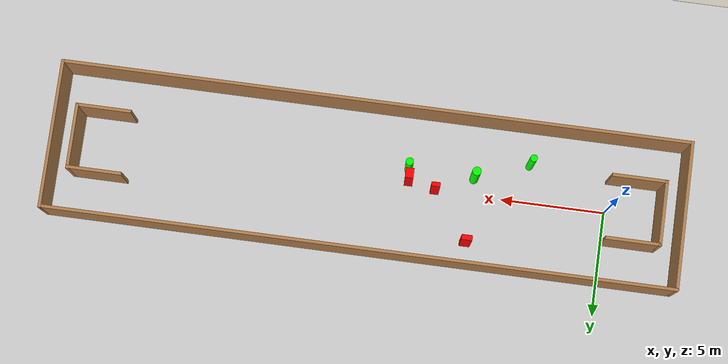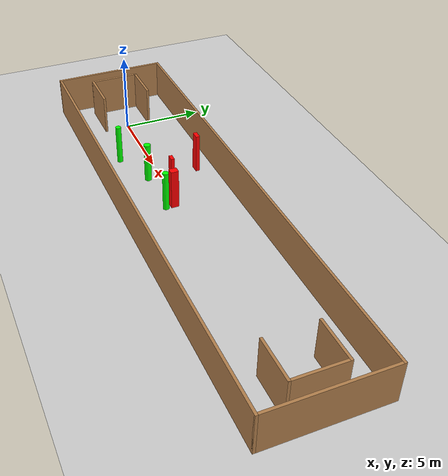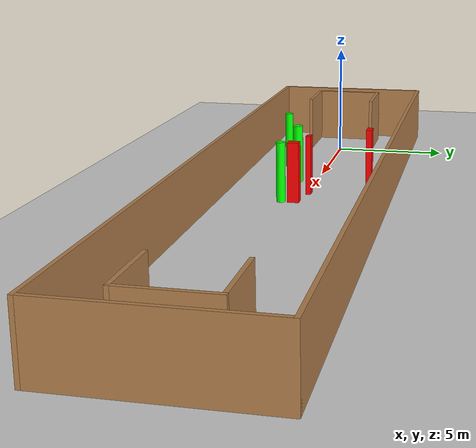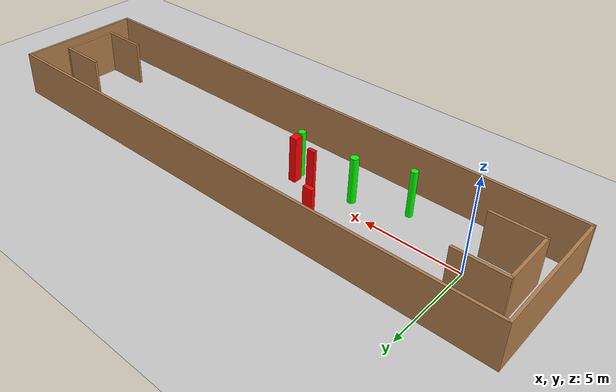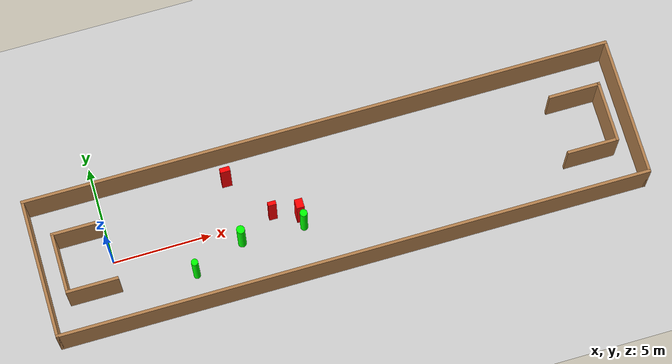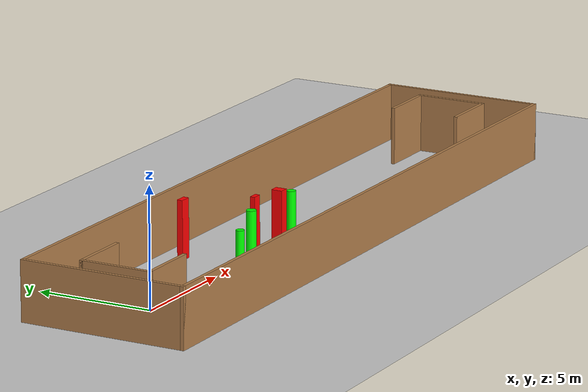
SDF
<sdf version="1.7">
 <world name="default">
  <light name="sun" type="directional">
   <pose>0 0 10 0 -0 0</pose>
   <diffuse>0.8 0.8 0.8 1</diffuse>
   <specular>0.2 0.2 0.2 1</specular>
   <attenuation>
    <range>1000</range>
    <constant>0.9</constant>
    <linear>0.01</linear>
    <quadratic>0.001</quadratic>
   </attenuation>
   <direction>-0.5 0.1 -0.9</direction>
   <spot><inner_angle>0</inner_angle><outer_angle>0</outer_angle><falloff>0</falloff></spot>
  </light>
  <model name="ground_plane">
   <static>1</static>
   <link name="link">
    <collision name="collision">
     <geometry><plane><normal>0 0 1</normal><size>100 100</size></plane></geometry>
     <surface>
      <contact><collide_bitmask>65535</collide_bitmask></contact>
      <friction><ode><mu>100</mu><mu2>50</mu2></ode></friction>
     </surface>
    </collision>
    <visual name="visual">
     <cast_shadows>0</cast_shadows>
     <geometry><plane><normal>0 0 1</normal><size>100 100</size></plane></geometry>
     <material>
      <script><uri>file://media/materials/scripts/gazebo.material</uri><name>Gazebo/Grey</name></script>
     </material>
    </visual>
   </link>
  </model>
  <gravity>0 0 -9.8</gravity>
  <magnetic_field>6e-06 2.3e-05 -4.2e-05</magnetic_field>
  <atmosphere type="adiabatic"/>
  <physics type="ode">
   <max_step_size>0.001</max_step_size>
   <real_time_factor>1</real_time_factor>
   <real_time_update_rate>1000</real_time_update_rate>
  </physics>
  <scene><ambient>0.4 0.4 0.4 1</ambient><background>0.7 0.7 0.7 1</background><shadows>1</shadows></scene>
  <spherical_coordinates>
   <surface_model>EARTH_WGS84</surface_model>
   <latitude_deg>0</latitude_deg>
   <longitude_deg>0</longitude_deg>
   <elevation>0</elevation>
   <heading_deg>0</heading_deg>
  </spherical_coordinates>
  <model name="my_base_walls">
   <link name="Wall_0">
    <collision name="Wall_0_Collision">
     <geometry><box><size>7.15 0.15 2.5</size></box></geometry>
     <pose>0 0 1.25 0 -0 0</pose>
    </collision>
    <visual name="Wall_0_Visual">
     <pose>0 0 1.25 0 -0 0</pose>
     <geometry><box><size>7.15 0.15 2.5</size></box></geometry>
     <material>
      <script><uri>file://media/materials/scripts/gazebo.material</uri><name>Gazebo/Wood</name></script>
      <ambient>1 1 1 1</ambient>
     </material>
     <meta><layer>0</layer></meta>
    </visual>
    <pose>-15 0 0 0 -0 1.5708</pose>
   </link>
   <link name="Wall_10">
    <collision name="Wall_10_Collision">
     <geometry><box><size>2.65 0.15 2.5</size></box></geometry>
     <pose>0 0 1.25 0 -0 0</pose>
    </collision>
    <visual name="Wall_10_Visual">
     <pose>0 0 1.25 0 -0 0</pose>
     <geometry><box><size>2.65 0.15 2.5</size></box></geometry>
     <material>
      <script><uri>file://media/materials/scripts/gazebo.material</uri><name>Gazebo/Wood</name></script>
      <ambient>1 1 1 1</ambient>
     </material>
     <meta><layer>0</layer></meta>
    </visual>
    <pose>-12.75 -1.5 0 0 -0 0</pose>
   </link>
   <link name="Wall_12">
    <collision name="Wall_12_Collision">
     <geometry><box><size>2.65 0.15 2.5</size></box></geometry>
     <pose>0 0 1.25 0 -0 0</pose>
    </collision>
    <visual name="Wall_12_Visual">
     <pose>0 0 1.25 0 -0 0</pose>
     <geometry><box><size>2.65 0.15 2.5</size></box></geometry>
     <material>
      <script><uri>file://media/materials/scripts/gazebo.material</uri><name>Gazebo/Wood</name></script>
      <ambient>1 1 1 1</ambient>
     </material>
     <meta><layer>0</layer></meta>
    </visual>
    <pose>-12.75 1.5 0 0 -0 0</pose>
   </link>
   <link name="Wall_14">
    <collision name="Wall_14_Collision">
     <geometry><box><size>3.15 0.15 2.5</size></box></geometry>
     <pose>0 0 1.25 0 -0 0</pose>
    </collision>
    <visual name="Wall_14_Visual">
     <pose>0 0 1.25 0 -0 0</pose>
     <geometry><box><size>3.15 0.15 2.5</size></box></geometry>
     <material>
      <script><uri>file://media/materials/scripts/gazebo.material</uri><name>Gazebo/Wood</name></script>
      <ambient>1 1 1 1</ambient>
     </material>
     <meta><layer>0</layer></meta>
    </visual>
    <pose>14 0 0 0 -0 -1.5708</pose>
   </link>
   <link name="Wall_15">
    <collision name="Wall_15_Collision">
     <geometry><box><size>2.65 0.15 2.5</size></box></geometry>
     <pose>0 0 1.25 0 -0 0</pose>
    </collision>
    <visual name="Wall_15_Visual">
     <pose>0 0 1.25 0 -0 0</pose>
     <geometry><box><size>2.65 0.15 2.5</size></box></geometry>
     <material>
      <script><uri>file://media/materials/scripts/gazebo.material</uri><name>Gazebo/Wood</name></script>
      <ambient>1 1 1 1</ambient>
     </material>
     <meta><layer>0</layer></meta>
    </visual>
    <pose>12.75 -1.5 0 0 -0 3.14159</pose>
   </link>
   <link name="Wall_17">
    <collision name="Wall_17_Collision">
     <geometry><box><size>2.65 0.15 2.5</size></box></geometry>
     <pose>0 0 1.25 0 -0 0</pose>
    </collision>
    <visual name="Wall_17_Visual">
     <pose>0 0 1.25 0 -0 0</pose>
     <geometry><box><size>2.65 0.15 2.5</size></box></geometry>
     <material>
      <script><uri>file://media/materials/scripts/gazebo.material</uri><name>Gazebo/Wood</name></script>
      <ambient>1 1 1 1</ambient>
     </material>
     <meta><layer>0</layer></meta>
    </visual>
    <pose>12.75 1.5 0 0 -0 3.14159</pose>
   </link>
   <link name="Wall_2">
    <collision name="Wall_2_Collision">
     <geometry><box><size>30.15 0.15 2.5</size></box></geometry>
     <pose>0 0 1.25 0 -0 0</pose>
    </collision>
    <visual name="Wall_2_Visual">
     <pose>0 0 1.25 0 -0 0</pose>
     <geometry><box><size>30.15 0.15 2.5</size></box></geometry>
     <material>
      <script><uri>file://media/materials/scripts/gazebo.material</uri><name>Gazebo/Wood</name></script>
      <ambient>1 1 1 1</ambient>
     </material>
     <meta><layer>0</layer></meta>
    </visual>
    <pose>-0 -3.5 0 0 -0 0</pose>
   </link>
   <link name="Wall_4">
    <collision name="Wall_4_Collision">
     <geometry><box><size>30.15 0.15 2.5</size></box></geometry>
     <pose>0 0 1.25 0 -0 0</pose>
    </collision>
    <visual name="Wall_4_Visual">
     <pose>0 0 1.25 0 -0 0</pose>
     <geometry><box><size>30.15 0.15 2.5</size></box></geometry>
     <material>
      <script><uri>file://media/materials/scripts/gazebo.material</uri><name>Gazebo/Wood</name></script>
      <ambient>1 1 1 1</ambient>
     </material>
     <meta><layer>0</layer></meta>
    </visual>
    <pose>-0 3.5 0 0 -0 0</pose>
   </link>
   <link name="Wall_6">
    <collision name="Wall_6_Collision">
     <geometry><box><size>7.15 0.15 2.5</size></box></geometry>
     <pose>0 0 1.25 0 -0 0</pose>
    </collision>
    <visual name="Wall_6_Visual">
     <pose>0 0 1.25 0 -0 0</pose>
     <geometry><box><size>7.15 0.15 2.5</size></box></geometry>
     <material>
      <script><uri>file://media/materials/scripts/gazebo.material</uri><name>Gazebo/Wood</name></script>
      <ambient>1 1 1 1</ambient>
     </material>
     <meta><layer>0</layer></meta>
    </visual>
    <pose>15 0 0 0 -0 -1.5708</pose>
   </link>
   <link name="Wall_9">
    <collision name="Wall_9_Collision">
     <geometry><box><size>3.15 0.15 2.5</size></box></geometry>
     <pose>0 0 1.25 0 -0 0</pose>
    </collision>
    <visual name="Wall_9_Visual">
     <pose>0 0 1.25 0 -0 0</pose>
     <geometry><box><size>3.15 0.15 2.5</size></box></geometry>
     <material>
      <script><uri>file://media/materials/scripts/gazebo.material</uri><name>Gazebo/Wood</name></script>
      <ambient>1 1 1 1</ambient>
     </material>
     <meta><layer>0</layer></meta>
    </visual>
    <pose>-14 0 0 0 -0 -1.5708</pose>
   </link>
   <static>1</static>
   <pose>11.5 0 0 0 -0 0</pose>
  </model>
  <model name="cylinder1">
   <static>1</static>
   <link name="link">
    <inertial>
     <mass>1</mass>
     <inertia><ixx>0.5</ixx><ixy>0</ixy><ixz>0</ixz><iyy>0.5</iyy><iyz>0</iyz><izz>1</izz></inertia>
    </inertial>
    <collision name="collision">
     <geometry><cylinder><radius>0.1876121654314718</radius><length>2.5</length></cylinder></geometry>
    </collision>
    <visual name="visual">
     <geometry><cylinder><radius>0.1876121654314718</radius><length>2.5</length></cylinder></geometry>
     <material>
      <ambient>0 1 0 1</ambient>
      <diffuse>0 1 0 1</diffuse>
      <specular>0.1 0.1 0.1 1</specular>
      <emissive>0 0 0 0</emissive>
     </material>
    </visual>
   </link>
   <pose>9.58605626579274 -0.85704880458472 1.25 0 0 0</pose>
  </model>
  <model name="cylinder2">
   <static>1</static>
   <link name="link">
    <inertial>
     <mass>1</mass>
     <inertia><ixx>0.5</ixx><ixy>0</ixy><ixz>0</ixz><iyy>0.5</iyy><iyz>0</iyz><izz>1</izz></inertia>
    </inertial>
    <collision name="collision">
     <geometry><cylinder><radius>0.17267050121459565</radius><length>2.5</length></cylinder></geometry>
    </collision>
    <visual name="visual">
     <geometry><cylinder><radius>0.17267050121459565</radius><length>2.5</length></cylinder></geometry>
     <material>
      <ambient>0 1 0 1</ambient>
      <diffuse>0 1 0 1</diffuse>
      <specular>0.1 0.1 0.1 1</specular>
      <emissive>0 0 0 0</emissive>
     </material>
    </visual>
   </link>
   <pose>3.8147814977090526 -1.7853550115220005 1.25 0 0 0</pose>
  </model>
  <model name="cylinder3">
   <static>1</static>
   <link name="link">
    <inertial>
     <mass>1</mass>
     <inertia><ixx>0.5</ixx><ixy>0</ixy><ixz>0</ixz><iyy>0.5</iyy><iyz>0</iyz><izz>1</izz></inertia>
    </inertial>
    <collision name="collision">
     <geometry><cylinder><radius>0.2099204452724047</radius><length>2.5</length></cylinder></geometry>
    </collision>
    <visual name="visual">
     <geometry><cylinder><radius>0.2099204452724047</radius><length>2.5</length></cylinder></geometry>
     <material>
      <ambient>0 1 0 1</ambient>
      <diffuse>0 1 0 1</diffuse>
      <specular>0.1 0.1 0.1 1</specular>
      <emissive>0 0 0 0</emissive>
     </material>
    </visual>
   </link>
   <pose>6.400788873790642 -0.8158903090654399 1.25 0 0 0</pose>
  </model>
  <model name="box1">
   <static>1</static>
   <link name="link">
    <inertial>
     <mass>1</mass>
     <inertia><ixx>0.083</ixx><ixy>0</ixy><ixz>0</ixz><iyy>0.083</iyy><iyz>0</iyz><izz>0.083</izz></inertia>
    </inertial>
    <collision name="collision">
     <geometry><box><size>0.4183626549101137 0.20649561332081237 2.5</size></box></geometry>
    </collision>
    <visual name="visual">
     <geometry><box><size>0.4183626549101137 0.20649561332081237 2.5</size></box></geometry>
     <material>
      <ambient>1 0 0 1</ambient>
      <diffuse>1 0 0 1</diffuse>
      <specular>0.1 0.1 0.1 1</specular>
      <emissive>0 0 0 0</emissive>
     </material>
    </visual>
    <sensor name="my_contact" type="contact">
     <contact><collision>box_collision</collision><topic>__default_topic__</topic></contact>
    </sensor>
   </link>
   <pose>8.224066958949638 0.04790402038310093 1.25 0 0 0</pose>
  </model>
  <model name="box2">
   <static>1</static>
   <link name="link">
    <inertial>
     <mass>1</mass>
     <inertia><ixx>0.083</ixx><ixy>0</ixy><ixz>0</ixz><iyy>0.083</iyy><iyz>0</iyz><izz>0.083</izz></inertia>
    </inertial>
    <collision name="collision">
     <geometry><box><size>0.3957278459878014 0.47181428658966806 2.5</size></box></geometry>
    </collision>
    <visual name="visual">
     <geometry><box><size>0.3957278459878014 0.47181428658966806 2.5</size></box></geometry>
     <material>
      <ambient>1 0 0 1</ambient>
      <diffuse>1 0 0 1</diffuse>
      <specular>0.1 0.1 0.1 1</specular>
      <emissive>0 0 0 0</emissive>
     </material>
    </visual>
    <sensor name="my_contact" type="contact">
     <contact><collision>box_collision</collision><topic>__default_topic__</topic></contact>
    </sensor>
   </link>
   <pose>9.51721132777337 -0.3277289952441196 1.25 0 0 0</pose>
  </model>
  <model name="box3">
   <static>1</static>
   <link name="link">
    <inertial>
     <mass>1</mass>
     <inertia><ixx>0.083</ixx><ixy>0</ixy><ixz>0</ixz><iyy>0.083</iyy><iyz>0</iyz><izz>0.083</izz></inertia>
    </inertial>
    <collision name="collision">
     <geometry><box><size>0.5094146217315008 0.24408372922689642 2.5</size></box></geometry>
    </collision>
    <visual name="visual">
     <geometry><box><size>0.5094146217315008 0.24408372922689642 2.5</size></box></geometry>
     <material>
      <ambient>1 0 0 1</ambient>
      <diffuse>1 0 0 1</diffuse>
      <specular>0.1 0.1 0.1 1</specular>
      <emissive>0 0 0 0</emissive>
     </material>
    </visual>
    <sensor name="my_contact" type="contact">
     <contact><collision>box_collision</collision><topic>__default_topic__</topic></contact>
    </sensor>
   </link>
   <pose>6.470848273063753 2.3518425853801945 1.25 0 0 0</pose>
  </model>
 </world>
</sdf>
